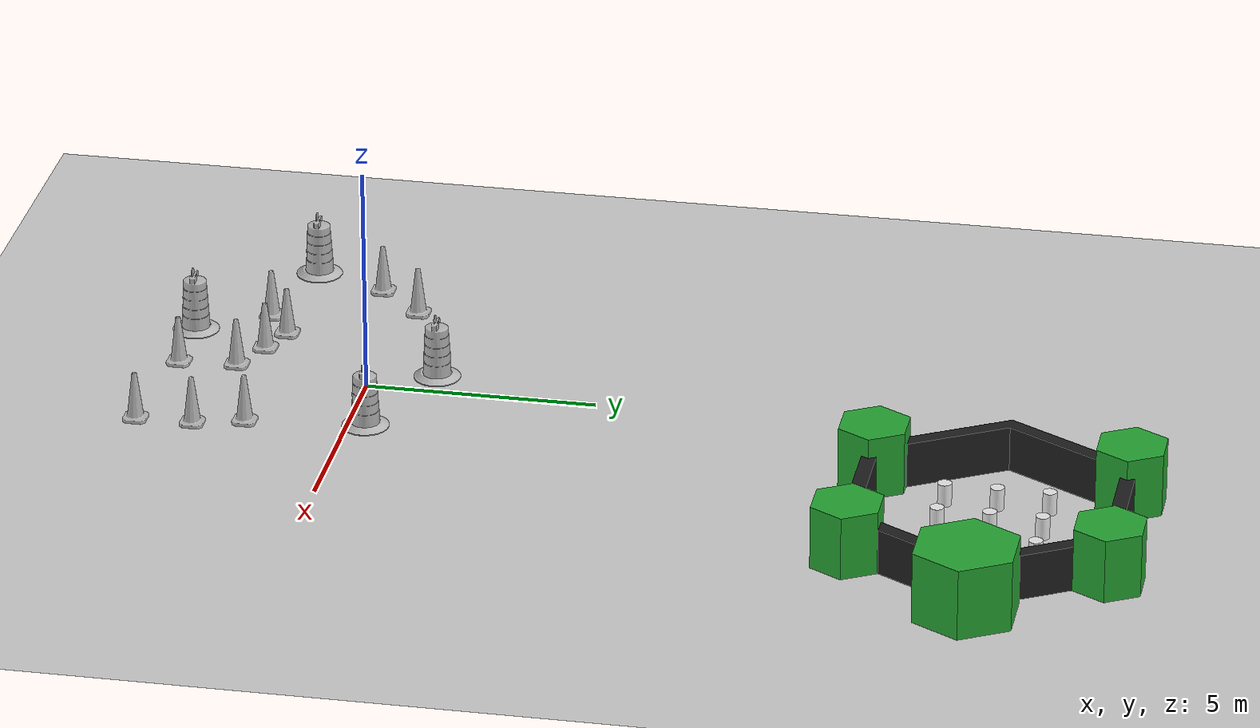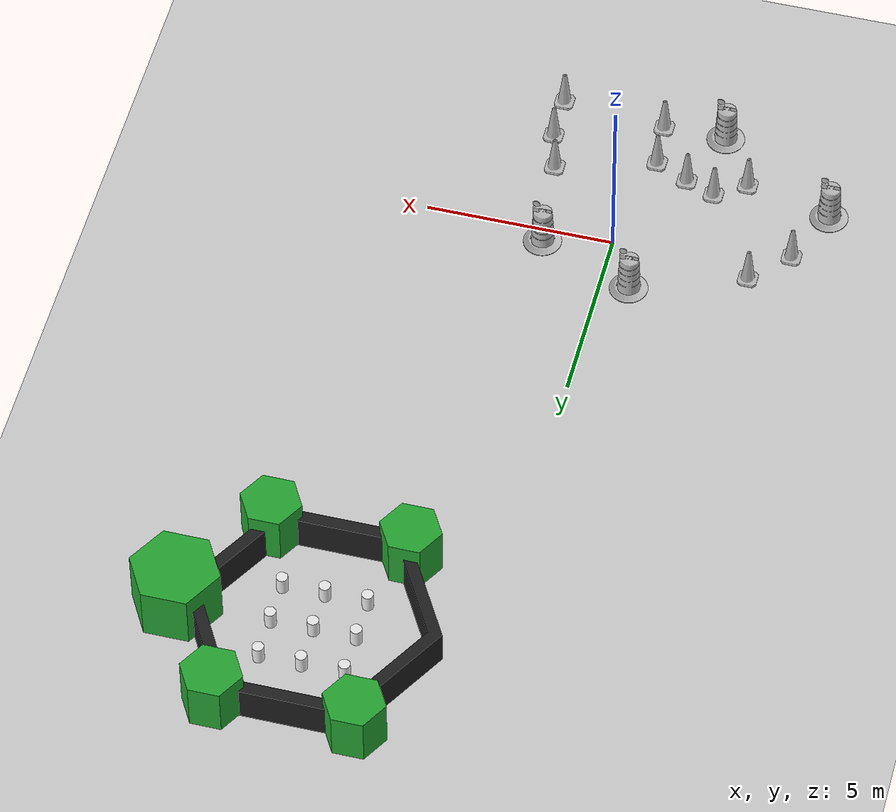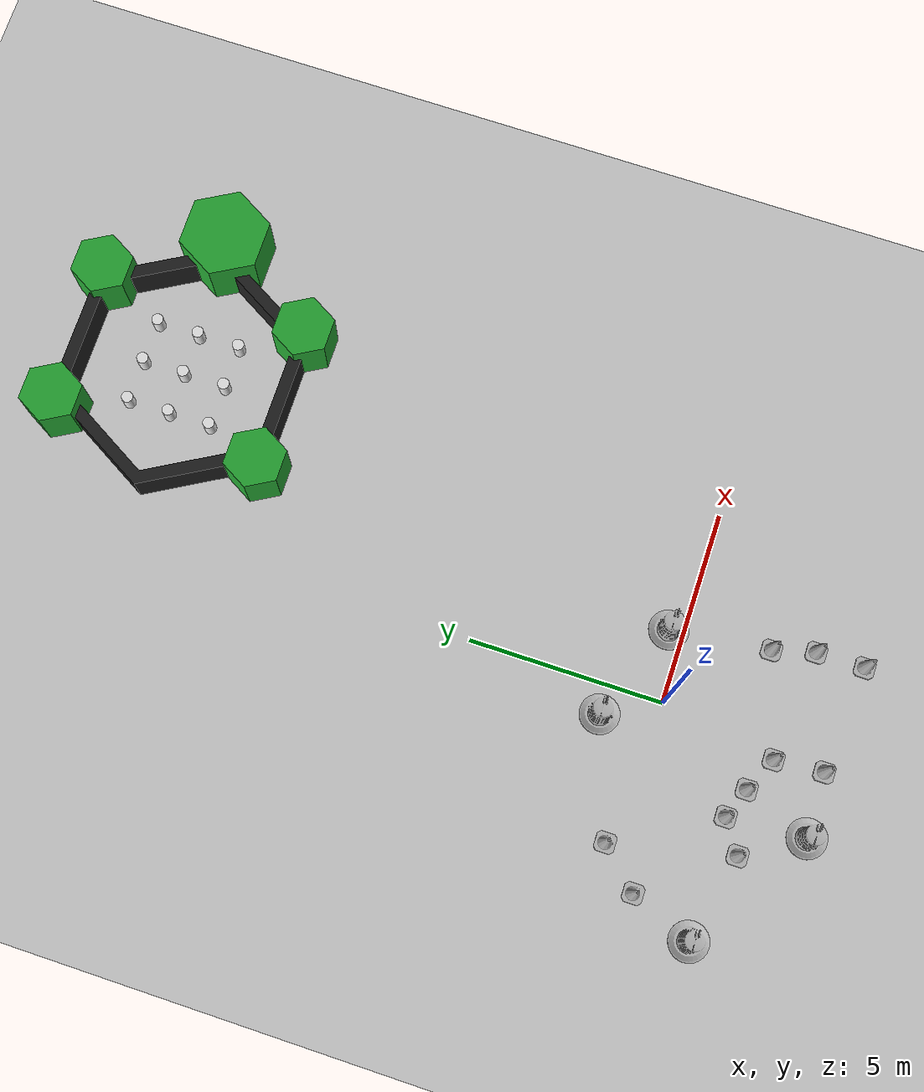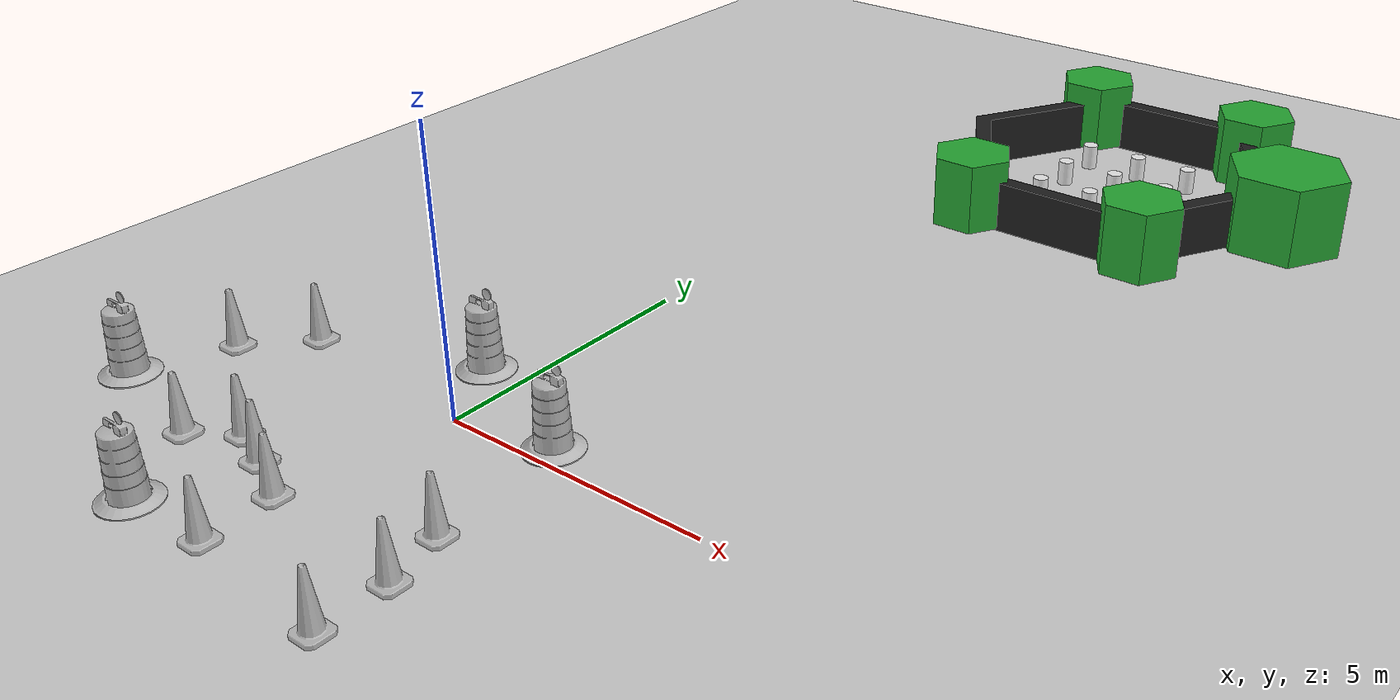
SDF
<sdf version="1.7">
 <world name="default">
  <light name="sun" type="directional">
   <pose>0 0 10 0 -0 0</pose>
   <diffuse>0.8 0.8 0.8 1</diffuse>
   <specular>0.2 0.2 0.2 1</specular>
   <attenuation>
    <range>1000</range>
    <constant>0.9</constant>
    <linear>0.01</linear>
    <quadratic>0.001</quadratic>
   </attenuation>
   <direction>-0.5 0.1 -0.9</direction>
   <spot><inner_angle>0</inner_angle><outer_angle>0</outer_angle><falloff>0</falloff></spot>
  </light>
  <model name="ground_plane">
   <static>1</static>
   <link name="link">
    <collision name="collision">
     <geometry><plane><normal>0 0 1</normal><size>100 100</size></plane></geometry>
     <surface>
      <contact><collide_bitmask>65535</collide_bitmask></contact>
      <friction><ode><mu>100</mu><mu2>50</mu2></ode></friction>
     </surface>
    </collision>
    <visual name="visual">
     <cast_shadows>0</cast_shadows>
     <geometry><plane><normal>0 0 1</normal><size>100 100</size></plane></geometry>
     <material>
      <script><uri>file://media/materials/scripts/gazebo.material</uri><name>Gazebo/Grey</name></script>
     </material>
    </visual>
   </link>
  </model>
  <gravity>0 0 -9.8</gravity>
  <magnetic_field>6e-06 2.3e-05 -4.2e-05</magnetic_field>
  <atmosphere type="adiabatic"/>
  <physics type="ode">
   <max_step_size>0.001</max_step_size>
   <real_time_factor>1</real_time_factor>
   <real_time_update_rate>1000</real_time_update_rate>
  </physics>
  <scene><ambient>0.4 0.4 0.4 1</ambient><background>0.7 0.7 0.7 1</background><shadows>1</shadows></scene>
  <spherical_coordinates>
   <surface_model>EARTH_WGS84</surface_model>
   <latitude_deg>0</latitude_deg>
   <longitude_deg>0</longitude_deg>
   <elevation>0</elevation>
   <heading_deg>0</heading_deg>
  </spherical_coordinates>
  <model name="Construction Barrel">
   <link name="link">
    <inertial>
     <pose>0 0 0.4 0 -0 0</pose>
     <mass>500</mass>
     <inertia><ixx>51.2096</ixx><iyy>51.2096</iyy><izz>25</izz><ixy>0</ixy><ixz>0</ixz><iyz>0</iyz></inertia>
    </inertial>
    <collision name="collision">
     <geometry><mesh><uri>model://construction_barrel/meshes/construction_barrel.dae</uri></mesh></geometry>
    </collision>
    <visual name="visual">
     <geometry><mesh><uri>model://construction_barrel/meshes/construction_barrel.dae</uri></mesh></geometry>
    </visual>
   </link>
   <pose>-0.756311 1.39226 -0 0 0 -4.5e-05</pose>
  </model>
  <model name="Construction Barrel_0">
   <link name="link">
    <inertial>
     <pose>0 0 0.4 0 -0 0</pose>
     <mass>500</mass>
     <inertia><ixx>51.2096</ixx><iyy>51.2096</iyy><izz>25</izz><ixy>0</ixy><ixz>0</ixz><iyz>0</iyz></inertia>
    </inertial>
    <collision name="collision">
     <geometry><mesh><uri>model://construction_barrel/meshes/construction_barrel.dae</uri></mesh></geometry>
    </collision>
    <visual name="visual">
     <geometry><mesh><uri>model://construction_barrel/meshes/construction_barrel.dae</uri></mesh></geometry>
    </visual>
   </link>
   <pose>1.80013 0.377141 -3e-06 -6e-06 -5e-06 -2.9e-05</pose>
  </model>
  <model name="Construction Cone">
   <link name="link">
    <collision name="collision">
     <geometry>
      <mesh><scale>10 10 10</scale><uri>model://construction_cone/meshes/construction_cone.dae</uri></mesh>
     </geometry>
    </collision>
    <visual name="visual">
     <geometry>
      <mesh><scale>10 10 10</scale><uri>model://construction_cone/meshes/construction_cone.dae</uri></mesh>
     </geometry>
    </visual>
    <inertial>
     <inertia><ixx>1</ixx><ixy>0</ixy><ixz>0</ixz><iyy>1</iyy><iyz>0</iyz><izz>1</izz></inertia>
     <mass>1</mass>
    </inertial>
   </link>
   <pose>-2.19745 -2.25046 -1e-06 2e-06 2e-06 0</pose>
  </model>
  <model name="Construction Cone_0">
   <link name="link">
    <collision name="collision">
     <geometry>
      <mesh><scale>10 10 10</scale><uri>model://construction_cone/meshes/construction_cone.dae</uri></mesh>
     </geometry>
    </collision>
    <visual name="visual">
     <geometry>
      <mesh><scale>10 10 10</scale><uri>model://construction_cone/meshes/construction_cone.dae</uri></mesh>
     </geometry>
    </visual>
    <inertial>
     <inertia><ixx>1</ixx><ixy>0</ixy><ixz>0</ixz><iyy>1</iyy><iyz>0</iyz><izz>1</izz></inertia>
     <mass>1</mass>
    </inertial>
   </link>
   <pose>-1.40494 -2.55135 -0 1e-06 -0 0</pose>
  </model>
  <model name="Construction Cone_1">
   <link name="link">
    <collision name="collision">
     <geometry>
      <mesh><scale>10 10 10</scale><uri>model://construction_cone/meshes/construction_cone.dae</uri></mesh>
     </geometry>
    </collision>
    <visual name="visual">
     <geometry>
      <mesh><scale>10 10 10</scale><uri>model://construction_cone/meshes/construction_cone.dae</uri></mesh>
     </geometry>
    </visual>
    <inertial>
     <inertia><ixx>1</ixx><ixy>0</ixy><ixz>0</ixz><iyy>1</iyy><iyz>0</iyz><izz>1</izz></inertia>
     <mass>1</mass>
    </inertial>
   </link>
   <pose>-0.501986 -2.9745 -0 0 -0 0</pose>
  </model>
  <model name="Construction Cone_2">
   <link name="link">
    <collision name="collision">
     <geometry>
      <mesh><scale>10 10 10</scale><uri>model://construction_cone/meshes/construction_cone.dae</uri></mesh>
     </geometry>
    </collision>
    <visual name="visual">
     <geometry>
      <mesh><scale>10 10 10</scale><uri>model://construction_cone/meshes/construction_cone.dae</uri></mesh>
     </geometry>
    </visual>
    <inertial>
     <inertia><ixx>1</ixx><ixy>0</ixy><ixz>0</ixz><iyy>1</iyy><iyz>0</iyz><izz>1</izz></inertia>
     <mass>1</mass>
    </inertial>
   </link>
   <pose>2.09724 -2.18232 -0 0 -0 0</pose>
  </model>
  <model name="Construction Cone_3">
   <link name="link">
    <collision name="collision">
     <geometry>
      <mesh><scale>10 10 10</scale><uri>model://construction_cone/meshes/construction_cone.dae</uri></mesh>
     </geometry>
    </collision>
    <visual name="visual">
     <geometry>
      <mesh><scale>10 10 10</scale><uri>model://construction_cone/meshes/construction_cone.dae</uri></mesh>
     </geometry>
    </visual>
    <inertial>
     <inertia><ixx>1</ixx><ixy>0</ixy><ixz>0</ixz><iyy>1</iyy><iyz>0</iyz><izz>1</izz></inertia>
     <mass>1</mass>
    </inertial>
   </link>
   <pose>-3.69879 0.345038 -0 0 -1e-06 0</pose>
  </model>
  <model name="Construction Cone_4">
   <link name="link">
    <collision name="collision">
     <geometry>
      <mesh><scale>10 10 10</scale><uri>model://construction_cone/meshes/construction_cone.dae</uri></mesh>
     </geometry>
    </collision>
    <visual name="visual">
     <geometry>
      <mesh><scale>10 10 10</scale><uri>model://construction_cone/meshes/construction_cone.dae</uri></mesh>
     </geometry>
    </visual>
    <inertial>
     <inertia><ixx>1</ixx><ixy>0</ixy><ixz>0</ixz><iyy>1</iyy><iyz>0</iyz><izz>1</izz></inertia>
     <mass>1</mass>
    </inertial>
   </link>
   <pose>-0.406438 -4.23374 -0 0 -1e-06 0</pose>
  </model>
  <model name="Construction Cone_5">
   <link name="link">
    <collision name="collision">
     <geometry>
      <mesh><scale>10 10 10</scale><uri>model://construction_cone/meshes/construction_cone.dae</uri></mesh>
     </geometry>
    </collision>
    <visual name="visual">
     <geometry>
      <mesh><scale>10 10 10</scale><uri>model://construction_cone/meshes/construction_cone.dae</uri></mesh>
     </geometry>
    </visual>
    <inertial>
     <inertia><ixx>1</ixx><ixy>0</ixy><ixz>0</ixz><iyy>1</iyy><iyz>0</iyz><izz>1</izz></inertia>
     <mass>1</mass>
    </inertial>
   </link>
   <pose>2.38815 -3.2576 -0 1e-06 -0 0</pose>
  </model>
  <model name="Construction Cone_6">
   <link name="link">
    <collision name="collision">
     <geometry>
      <mesh><scale>10 10 10</scale><uri>model://construction_cone/meshes/construction_cone.dae</uri></mesh>
     </geometry>
    </collision>
    <visual name="visual">
     <geometry>
      <mesh><scale>10 10 10</scale><uri>model://construction_cone/meshes/construction_cone.dae</uri></mesh>
     </geometry>
    </visual>
    <inertial>
     <inertia><ixx>1</ixx><ixy>0</ixy><ixz>0</ixz><iyy>1</iyy><iyz>0</iyz><izz>1</izz></inertia>
     <mass>1</mass>
    </inertial>
   </link>
   <pose>2.39316 -4.49605 -0 0 -1e-06 0</pose>
  </model>
  <model name="Construction Cone_7">
   <link name="link">
    <collision name="collision">
     <geometry>
      <mesh><scale>10 10 10</scale><uri>model://construction_cone/meshes/construction_cone.dae</uri></mesh>
     </geometry>
    </collision>
    <visual name="visual">
     <geometry>
      <mesh><scale>10 10 10</scale><uri>model://construction_cone/meshes/construction_cone.dae</uri></mesh>
     </geometry>
    </visual>
    <inertial>
     <inertia><ixx>1</ixx><ixy>0</ixy><ixz>0</ixz><iyy>1</iyy><iyz>0</iyz><izz>1</izz></inertia>
     <mass>1</mass>
    </inertial>
   </link>
   <pose>-3.00495 -2.78053 -0 0 -1e-06 0</pose>
  </model>
  <model name="Construction Cone_8">
   <link name="link">
    <collision name="collision">
     <geometry>
      <mesh><scale>10 10 10</scale><uri>model://construction_cone/meshes/construction_cone.dae</uri></mesh>
     </geometry>
    </collision>
    <visual name="visual">
     <geometry>
      <mesh><scale>10 10 10</scale><uri>model://construction_cone/meshes/construction_cone.dae</uri></mesh>
     </geometry>
    </visual>
    <inertial>
     <inertia><ixx>1</ixx><ixy>0</ixy><ixz>0</ixz><iyy>1</iyy><iyz>0</iyz><izz>1</izz></inertia>
     <mass>1</mass>
    </inertial>
   </link>
   <pose>-4.64786 -0.646522 -0 0 -1e-06 0</pose>
  </model>
  <model name="Construction Barrel_1">
   <link name="link">
    <inertial>
     <pose>0 0 0.4 0 -0 0</pose>
     <mass>500</mass>
     <inertia><ixx>51.2096</ixx><iyy>51.2096</iyy><izz>25</izz><ixy>0</ixy><ixz>0</ixz><iyz>0</iyz></inertia>
    </inertial>
    <collision name="collision">
     <geometry><mesh><uri>model://construction_barrel/meshes/construction_barrel.dae</uri></mesh></geometry>
    </collision>
    <visual name="visual">
     <geometry><mesh><uri>model://construction_barrel/meshes/construction_barrel.dae</uri></mesh></geometry>
    </visual>
   </link>
   <pose>-5.31087 -2.2371 -0 2e-06 -1e-06 -1.8e-05</pose>
  </model>
  <model name="Construction Barrel_2">
   <link name="link">
    <inertial>
     <pose>0 0 0.4 0 -0 0</pose>
     <mass>500</mass>
     <inertia><ixx>51.2096</ixx><iyy>51.2096</iyy><izz>25</izz><ixy>0</ixy><ixz>0</ixz><iyz>0</iyz></inertia>
    </inertial>
    <collision name="collision">
     <geometry><mesh><uri>model://construction_barrel/meshes/construction_barrel.dae</uri></mesh></geometry>
    </collision>
    <visual name="visual">
     <geometry><mesh><uri>model://construction_barrel/meshes/construction_barrel.dae</uri></mesh></geometry>
    </visual>
   </link>
   <pose>-2.07694 -4.262 -3e-06 -6e-06 -5e-06 -9e-06</pose>
  </model>
  <model name="ros_symbol">
   <static>1</static>
   <link name="symbol">
    <collision name="one_one">
     <pose>-1.1 -1.1 0.25 0 -0 0</pose>
     <geometry><cylinder><radius>0.15</radius><length>0.5</length></cylinder></geometry>
    </collision>
    <visual name="one_one">
     <pose>-1.1 -1.1 0.25 0 -0 0</pose>
     <geometry><cylinder><radius>0.15</radius><length>0.5</length></cylinder></geometry>
     <material>
      <script><uri>file://media/materials/scripts/gazebo.material</uri><name>Gazebo/White</name></script>
     </material>
    </visual>
    <collision name="one_two">
     <pose>-1.1 0 0.25 0 -0 0</pose>
     <geometry><cylinder><radius>0.15</radius><length>0.5</length></cylinder></geometry>
    </collision>
    <visual name="one_two">
     <pose>-1.1 0 0.25 0 -0 0</pose>
     <geometry><cylinder><radius>0.15</radius><length>0.5</length></cylinder></geometry>
     <material>
      <script><uri>file://media/materials/scripts/gazebo.material</uri><name>Gazebo/White</name></script>
     </material>
    </visual>
    <collision name="one_three">
     <pose>-1.1 1.1 0.25 0 -0 0</pose>
     <geometry><cylinder><radius>0.15</radius><length>0.5</length></cylinder></geometry>
    </collision>
    <visual name="one_three">
     <pose>-1.1 1.1 0.25 0 -0 0</pose>
     <geometry><cylinder><radius>0.15</radius><length>0.5</length></cylinder></geometry>
     <material>
      <script><uri>file://media/materials/scripts/gazebo.material</uri><name>Gazebo/White</name></script>
     </material>
    </visual>
    <collision name="two_one">
     <pose>0 -1.1 0.25 0 -0 0</pose>
     <geometry><cylinder><radius>0.15</radius><length>0.5</length></cylinder></geometry>
    </collision>
    <visual name="two_one">
     <pose>0 -1.1 0.25 0 -0 0</pose>
     <geometry><cylinder><radius>0.15</radius><length>0.5</length></cylinder></geometry>
     <material>
      <script><uri>file://media/materials/scripts/gazebo.material</uri><name>Gazebo/White</name></script>
     </material>
    </visual>
    <collision name="two_two">
     <pose>0 0 0.25 0 -0 0</pose>
     <geometry><cylinder><radius>0.15</radius><length>0.5</length></cylinder></geometry>
    </collision>
    <visual name="two_two">
     <pose>0 0 0.25 0 -0 0</pose>
     <geometry><cylinder><radius>0.15</radius><length>0.5</length></cylinder></geometry>
     <material>
      <script><uri>file://media/materials/scripts/gazebo.material</uri><name>Gazebo/White</name></script>
     </material>
    </visual>
    <collision name="two_three">
     <pose>0 1.1 0.25 0 -0 0</pose>
     <geometry><cylinder><radius>0.15</radius><length>0.5</length></cylinder></geometry>
    </collision>
    <visual name="two_three">
     <pose>0 1.1 0.25 0 -0 0</pose>
     <geometry><cylinder><radius>0.15</radius><length>0.5</length></cylinder></geometry>
     <material>
      <script><uri>file://media/materials/scripts/gazebo.material</uri><name>Gazebo/White</name></script>
     </material>
    </visual>
    <collision name="three_one">
     <pose>1.1 -1.1 0.25 0 -0 0</pose>
     <geometry><cylinder><radius>0.15</radius><length>0.5</length></cylinder></geometry>
    </collision>
    <visual name="three_one">
     <pose>1.1 -1.1 0.25 0 -0 0</pose>
     <geometry><cylinder><radius>0.15</radius><length>0.5</length></cylinder></geometry>
     <material>
      <script><uri>file://media/materials/scripts/gazebo.material</uri><name>Gazebo/White</name></script>
     </material>
    </visual>
    <collision name="three_two">
     <pose>1.1 0 0.25 0 -0 0</pose>
     <geometry><cylinder><radius>0.15</radius><length>0.5</length></cylinder></geometry>
    </collision>
    <visual name="three_two">
     <pose>1.1 0 0.25 0 -0 0</pose>
     <geometry><cylinder><radius>0.15</radius><length>0.5</length></cylinder></geometry>
     <material>
      <script><uri>file://media/materials/scripts/gazebo.material</uri><name>Gazebo/White</name></script>
     </material>
    </visual>
    <collision name="three_three">
     <pose>1.1 1.1 0.25 0 -0 0</pose>
     <geometry><cylinder><radius>0.15</radius><length>0.5</length></cylinder></geometry>
    </collision>
    <visual name="three_three">
     <pose>1.1 1.1 0.25 0 -0 0</pose>
     <geometry><cylinder><radius>0.15</radius><length>0.5</length></cylinder></geometry>
     <material>
      <script><uri>file://media/materials/scripts/gazebo.material</uri><name>Gazebo/White</name></script>
     </material>
    </visual>
    <collision name="head">
     <pose>3.5 0 -0.5 0 -0 0</pose>
     <geometry>
      <mesh><uri>model://turtlebot3_world/meshes/hexagon.dae</uri><scale>0.8 0.8 0.8</scale></mesh>
     </geometry>
    </collision>
    <visual name="head">
     <pose>3.5 0 -0.5 0 -0 0</pose>
     <geometry>
      <mesh><uri>model://turtlebot3_world/meshes/hexagon.dae</uri><scale>0.8 0.8 0.8</scale></mesh>
     </geometry>
     <material>
      <script><uri>file://media/materials/scripts/gazebo.material</uri><name>Gazebo/Green</name></script>
     </material>
    </visual>
    <collision name="left_hand">
     <pose>1.8 2.7 0 0 -0 0</pose>
     <geometry>
      <mesh><uri>model://turtlebot3_world/meshes/hexagon.dae</uri><scale>0.55 0.55 0.55</scale></mesh>
     </geometry>
    </collision>
    <visual name="left_hand">
     <pose>1.8 2.7 0 0 -0 0</pose>
     <geometry>
      <mesh><uri>model://turtlebot3_world/meshes/hexagon.dae</uri><scale>0.55 0.55 0.55</scale></mesh>
     </geometry>
     <material>
      <script><uri>file://media/materials/scripts/gazebo.material</uri><name>Gazebo/Green</name></script>
     </material>
    </visual>
    <collision name="right_hand">
     <pose>1.8 -2.7 0 0 -0 0</pose>
     <geometry>
      <mesh><uri>model://turtlebot3_world/meshes/hexagon.dae</uri><scale>0.55 0.55 0.55</scale></mesh>
     </geometry>
    </collision>
    <visual name="right_hand">
     <pose>1.8 -2.7 0 0 -0 0</pose>
     <geometry>
      <mesh><uri>model://turtlebot3_world/meshes/hexagon.dae</uri><scale>0.55 0.55 0.55</scale></mesh>
     </geometry>
     <material>
      <script><uri>file://media/materials/scripts/gazebo.material</uri><name>Gazebo/Green</name></script>
     </material>
    </visual>
    <collision name="left_foot">
     <pose>-1.8 2.7 0 0 -0 0</pose>
     <geometry>
      <mesh><uri>model://turtlebot3_world/meshes/hexagon.dae</uri><scale>0.55 0.55 0.55</scale></mesh>
     </geometry>
    </collision>
    <visual name="left_foot">
     <pose>-1.8 2.7 0 0 -0 0</pose>
     <geometry>
      <mesh><uri>model://turtlebot3_world/meshes/hexagon.dae</uri><scale>0.55 0.55 0.55</scale></mesh>
     </geometry>
     <material>
      <script><uri>file://media/materials/scripts/gazebo.material</uri><name>Gazebo/Green</name></script>
     </material>
    </visual>
    <collision name="right_foot">
     <pose>-1.8 -2.7 0 0 -0 0</pose>
     <geometry>
      <mesh><uri>model://turtlebot3_world/meshes/hexagon.dae</uri><scale>0.55 0.55 0.55</scale></mesh>
     </geometry>
    </collision>
    <visual name="right_foot">
     <pose>-1.8 -2.7 0 0 -0 0</pose>
     <geometry>
      <mesh><uri>model://turtlebot3_world/meshes/hexagon.dae</uri><scale>0.55 0.55 0.55</scale></mesh>
     </geometry>
     <material>
      <script><uri>file://media/materials/scripts/gazebo.material</uri><name>Gazebo/Green</name></script>
     </material>
    </visual>
    <collision name="body">
     <pose>0 0 -0.3 0 0 -1.5708</pose>
     <geometry>
      <mesh><uri>model://turtlebot3_world/meshes/wall.dae</uri><scale>0.25 0.25 0.25</scale></mesh>
     </geometry>
    </collision>
    <visual name="body">
     <pose>0 0 -0.3 0 0 -1.5708</pose>
     <geometry>
      <mesh><uri>model://turtlebot3_world/meshes/wall.dae</uri><scale>0.25 0.25 0.25</scale></mesh>
     </geometry>
     <material>
      <script><uri>file://media/materials/scripts/gazebo.material</uri><name>Gazebo/FlatBlack</name></script>
     </material>
    </visual>
   </link>
   <pose>4.24807 14.0904 0 0 -0 0</pose>
  </model>
 </world>
</sdf>
